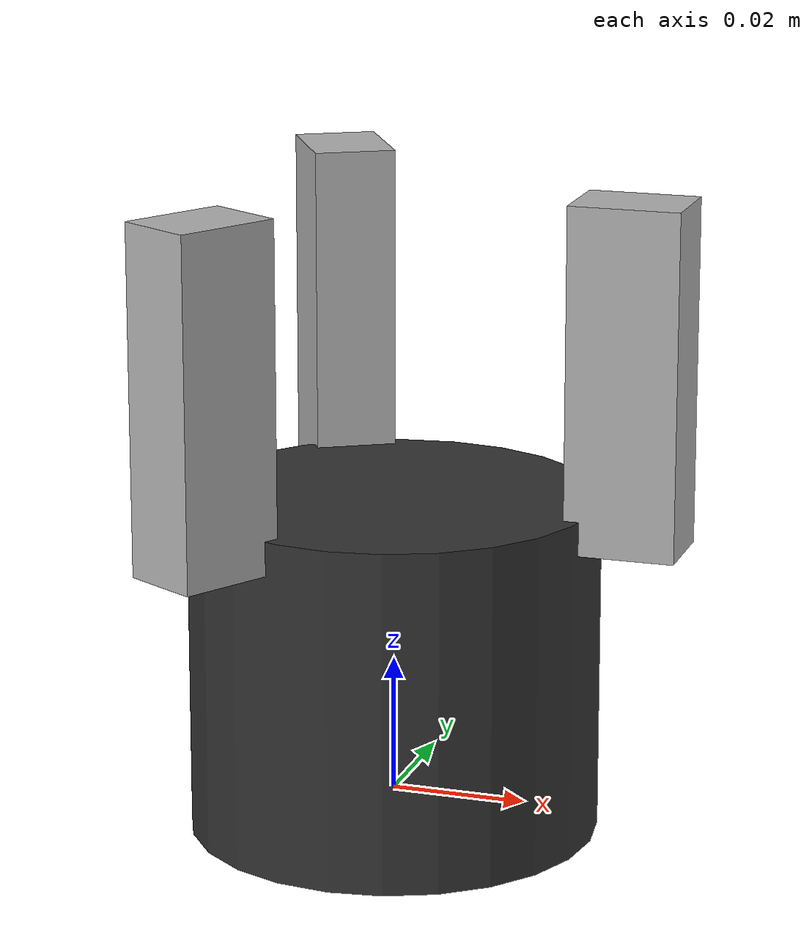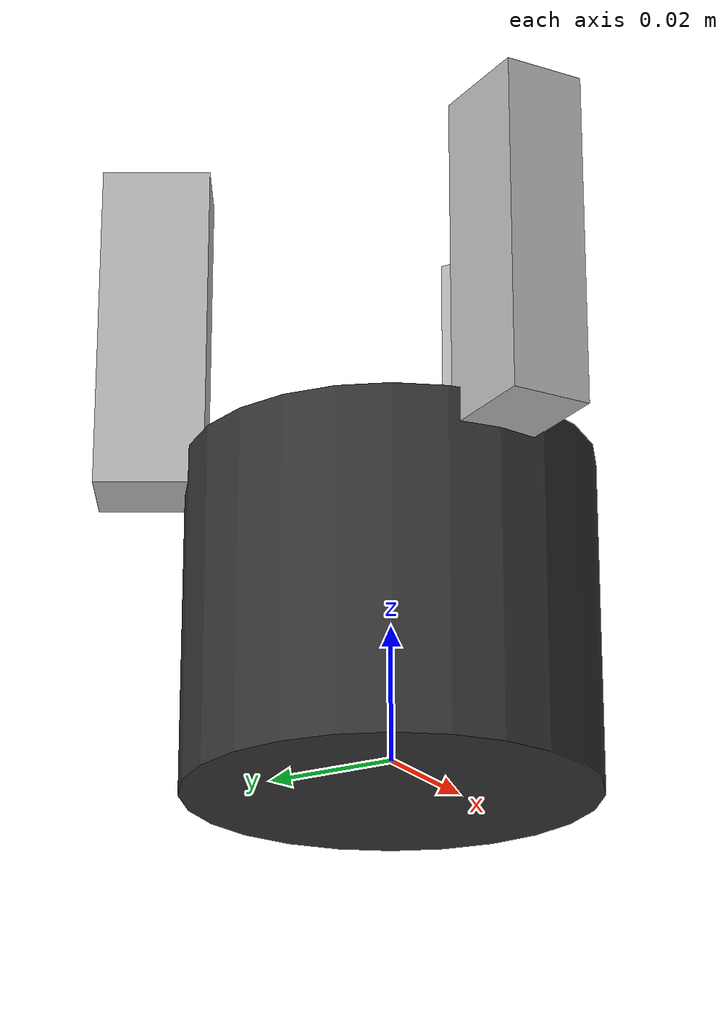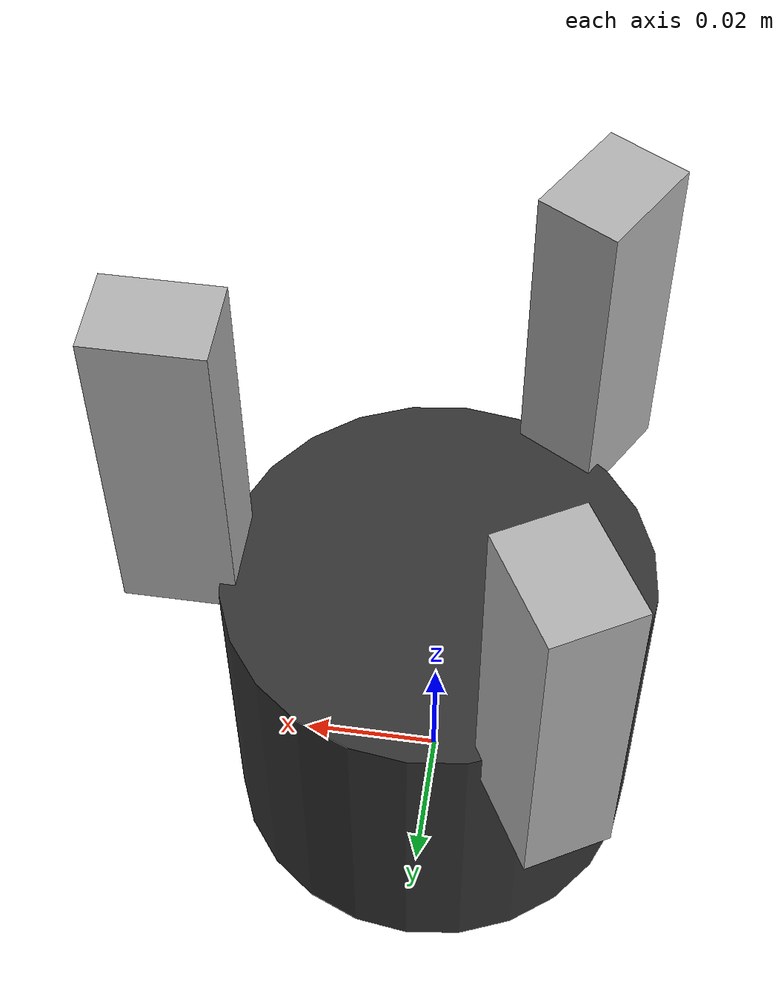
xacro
<?xml version="1.0"?>

<robot xmlns:xacro="http://www.ros.org/wiki/xacro">

  <!-- ==================== MATERIALS ==================== -->
  <material name="dark_grey">
    <color rgba="0.2 0.2 0.2 1.0"/>
  </material>
  <material name="light_grey">
    <color rgba="0.7 0.7 0.7 1.0"/>
  </material>

  <!-- ==================== BASE / PALM ==================== -->
  <link name="gripper_base_link">
    <visual>
      <origin xyz="0 0 0.02" rpy="0 0 0"/>
      <geometry>
        <cylinder radius="0.03" length="0.05"/>
      </geometry>
      <material name="dark_grey"/>
    </visual>
    <collision>
      <origin xyz="0 0 0.02" rpy="0 0 0"/>
      <geometry>
        <cylinder radius="0.035" length="0.04"/>
      </geometry>
    </collision>
  </link>

  <!-- ==================== FINGER 1 (front) ==================== -->
  <link name="finger_1_proximal">
    <visual>
      <origin xyz="0 0 0.025" rpy="0 0 0"/>
      <geometry>
        <box size="0.016 0.012 0.05"/>
      </geometry>
      <material name="light_grey"/>
    </visual>
    <collision>
      <origin xyz="0 0 0.025" rpy="0 0 0"/>
      <geometry>
        <box size="0.016 0.012 0.05"/>
      </geometry>
    </collision>
  </link>

  <joint name="finger_1_joint" type="revolute">
    <parent link="gripper_base_link"/>
    <child  link="finger_1_proximal"/>
    <!-- Placed at the front of the palm -->
    <origin xyz="0.035 0.0 0.04" rpy="0 0 0"/>
    <axis xyz="0 1 0"/>
    <limit lower="-0.5" upper="0.5" effort="10" velocity="2.0"/>
  </joint>

  <!-- ==================== FINGER 2 (rear-left) ==================== -->
  <link name="finger_2_proximal">
    <visual>
      <origin xyz="0 0 0.025" rpy="0 0 0"/>
      <geometry>
        <box size="0.016 0.012 0.05"/>
      </geometry>
      <material name="light_grey"/>
    </visual>
    <collision>
      <origin xyz="0 0 0.025" rpy="0 0 0"/>
      <geometry>
        <box size="0.016 0.012 0.05"/>
      </geometry>
    </collision>
  </link>

  <joint name="finger_2_joint" type="revolute">
    <parent link="gripper_base_link"/>
    <child  link="finger_2_proximal"/>
    <!-- 120 deg offset around Z from finger 1 -->
    <origin xyz="-0.0175 0.0303 0.04" rpy="0 0 2.094"/>
    <axis xyz="0 1 0"/>
    <limit lower="-0.5" upper="0.5" effort="10" velocity="2.0"/>
    <mimic joint="finger_1_joint" multiplier="1.0" offset="0.0"/>
  </joint>

  <!-- ==================== FINGER 3 (rear-right) ==================== -->
  <link name="finger_3_proximal">
    <visual>
      <origin xyz="0 0 0.025" rpy="0 0 0"/>
      <geometry>
        <box size="0.016 0.012 0.05"/>
      </geometry>
      <material name="light_grey"/>
    </visual>
    <collision>
      <origin xyz="0 0 0.025" rpy="0 0 0"/>
      <geometry>
        <box size="0.016 0.012 0.05"/>
      </geometry>
    </collision>
  </link>

  <joint name="finger_3_joint" type="revolute">
    <parent link="gripper_base_link"/>
    <child  link="finger_3_proximal"/>
    <!-- 240 deg offset around Z from finger 1 -->
    <origin xyz="-0.0175 -0.0303 0.04" rpy="0 0 4.189"/>
    <axis xyz="0 1 0"/>
    <limit lower="-0.5" upper="0.5" effort="10" velocity="2.0"/>
    <mimic joint="finger_1_joint" multiplier="1.0" offset="0.0"/>
  </joint>

</robot>
